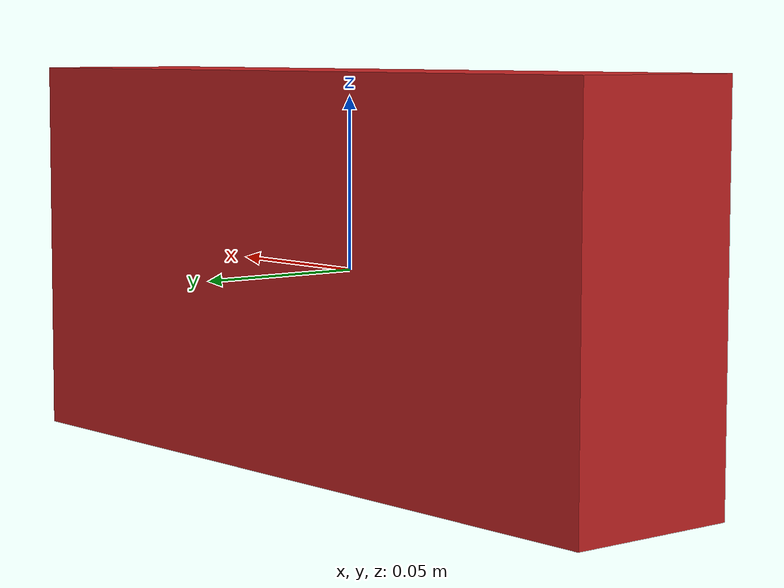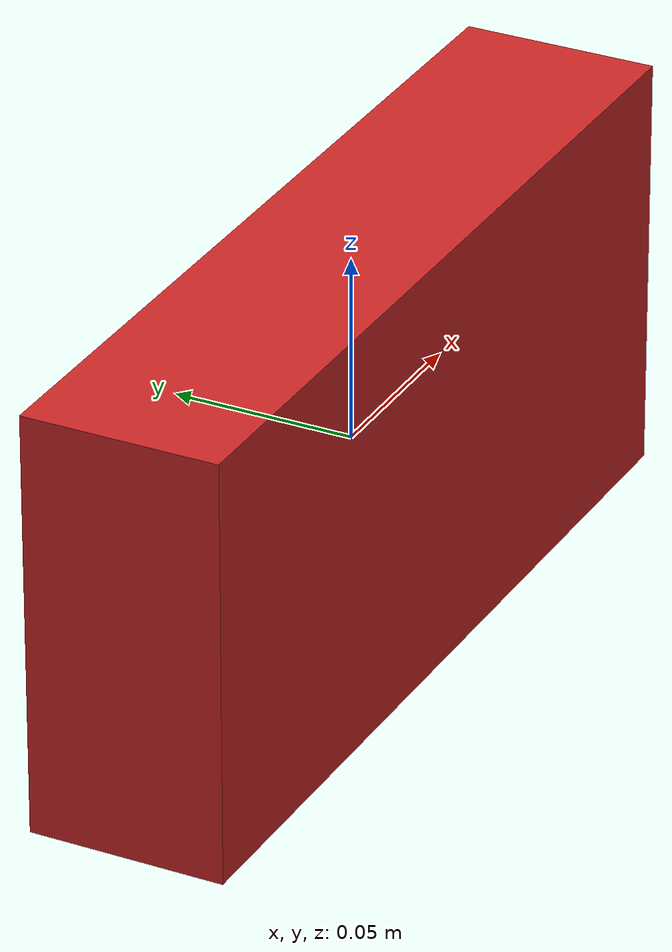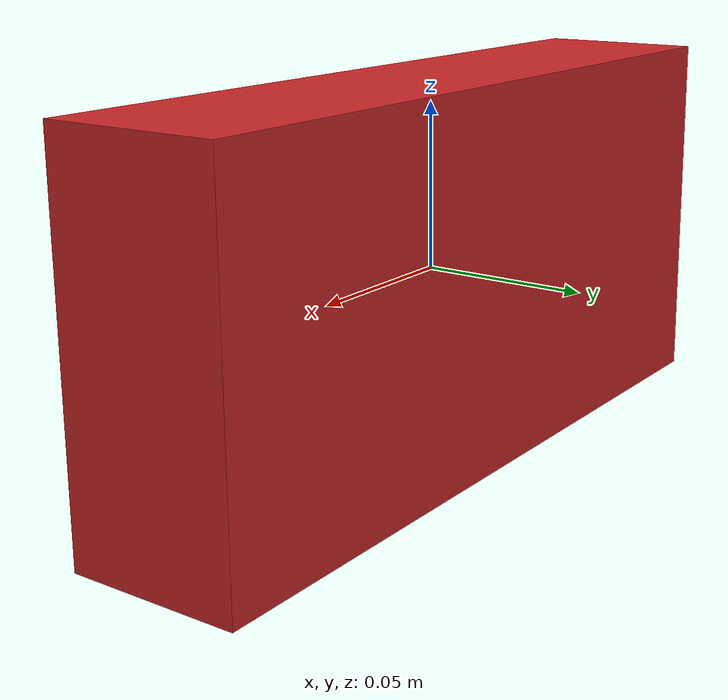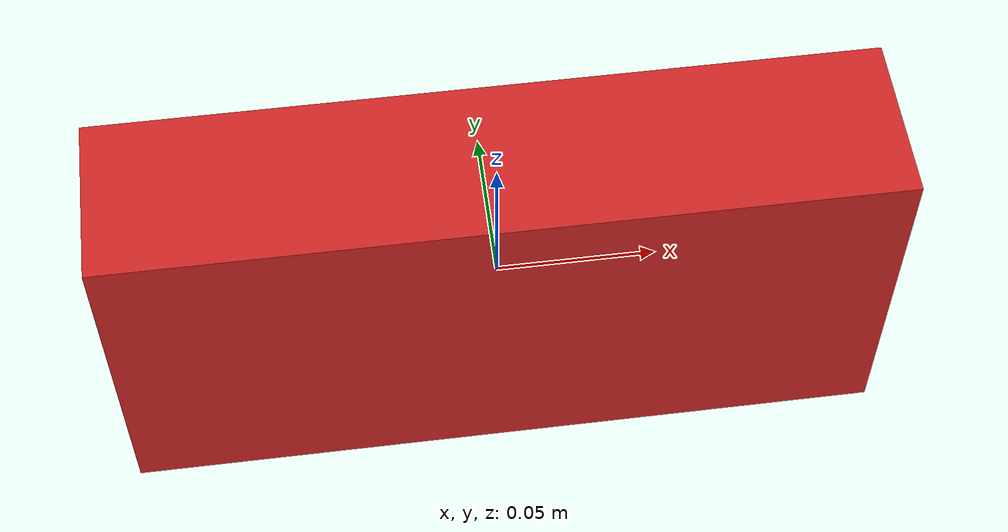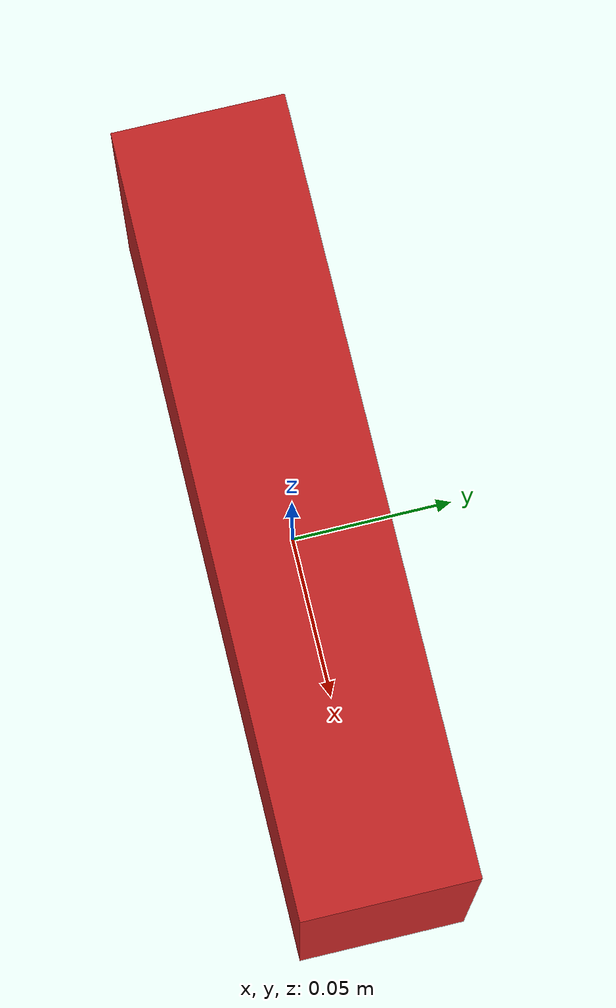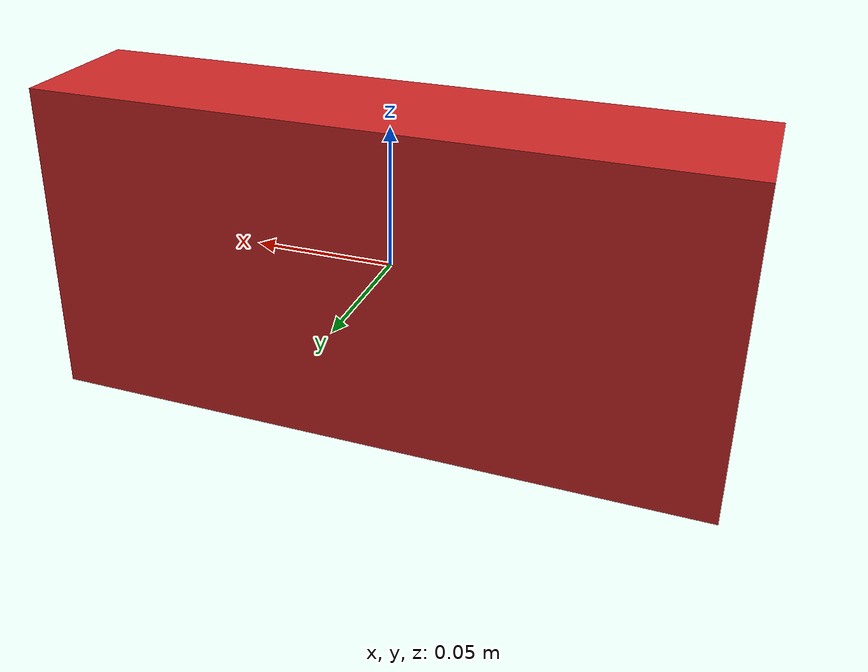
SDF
<?xml version="1.0"?>
<sdf version="1.6">
  <model name="pick_target">
    <static>false</static>
    <self_collide>false</self_collide>
    <allow_auto_disable>false</allow_auto_disable>
    <link name="pick_target_link">
      <inertial>
        <mass>0.20</mass>
        <inertia>
          <ixx>0.0002672333</ixx>
          <ixy>0</ixy>
          <ixz>0</ixz>
          <iyy>0.0011804167</iyy>
          <iyz>0</iyz>
          <izz>0.0010068167</izz>
        </inertia>
      </inertial>
      <collision name="pick_target_collision">
        <geometry><box><size>0.240 0.053 0.115</size></box></geometry>
        <surface>
          <friction>
            <ode><mu>2.0</mu><mu2>2.0</mu2></ode>
          </friction>
          <contact>
            <ode><kp>1000000.0</kp><kd>10.0</kd><max_vel>0.02</max_vel><min_depth>0.001</min_depth></ode>
          </contact>
        </surface>
      </collision>
      <visual name="pick_target_visual">
        <geometry><box><size>0.240 0.053 0.115</size></box></geometry>
        <material>
          <script>
            <uri>file://media/materials/scripts/gazebo.material</uri>
            <name>Gazebo/Red</name>
          </script>
          <ambient>0.85 0.03 0.02 1</ambient>
          <diffuse>0.85 0.03 0.02 1</diffuse>
          <specular>0.05 0.01 0.01 1</specular>
        </material>
      </visual>
      <sensor name="pick_target_contact_sensor" type="contact">
        <always_on>true</always_on>
        <update_rate>100.0</update_rate>
        <contact><collision>pick_target_collision</collision></contact>
        <plugin name="pick_target_contact_publisher"
                filename="libgazebo_ros_bumper.so">
          <robotNamespace>/pick_target</robotNamespace>
          <bumperTopicName>/pick_target/contacts</bumperTopicName>
          <frameName>world</frameName>
        </plugin>
      </sensor>
    </link>
  </model>
</sdf>
